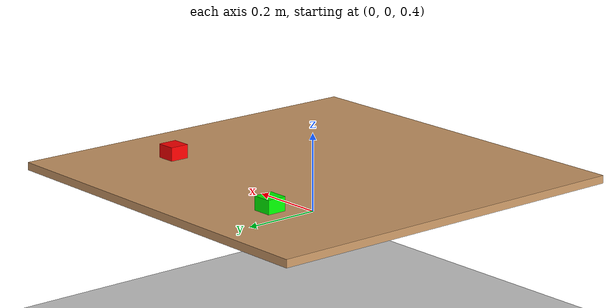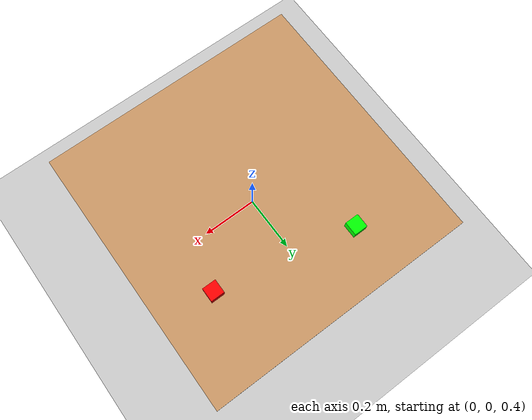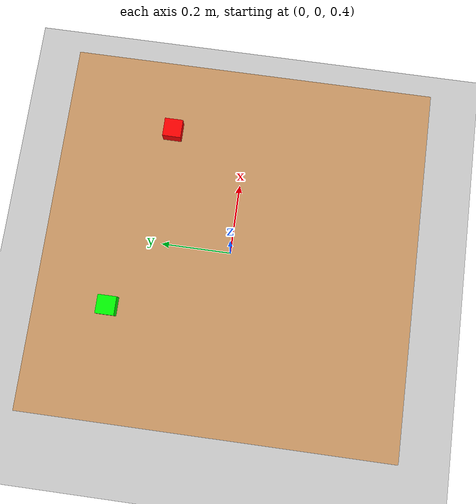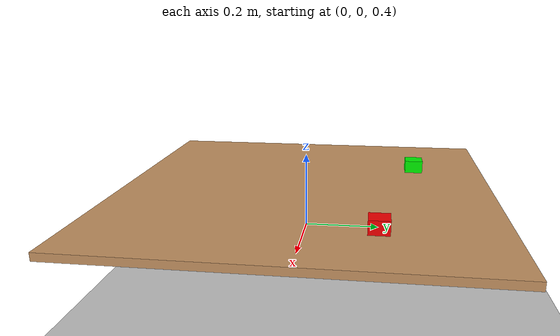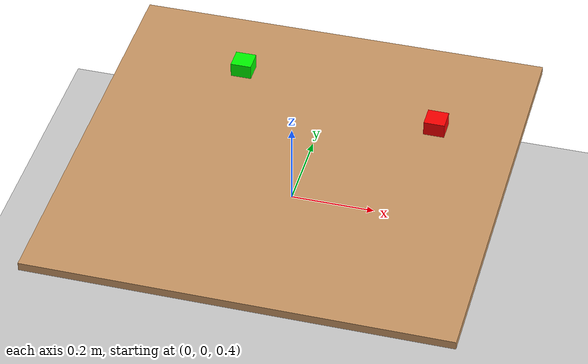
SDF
<?xml version="1.0" ?>
<sdf version="1.6">
  <world name="arm_world">

    <include>
      <uri>model://ground_plane</uri>
    </include>

    <include>
      <uri>model://sun</uri>
    </include>

    <!-- Table for the arm -->
    <model name="table">
      <static>true</static>
      <link name="table_link">
        <pose>0 0 0.5 0 0 0</pose>
        <collision name="table_collision">
          <geometry>
            <box>
              <size>1.0 1.0 0.02</size>
            </box>
          </geometry>
        </collision>
        <visual name="table_visual">
          <geometry>
            <box>
              <size>1.0 1.0 0.02</size>
            </box>
          </geometry>
          <material>
            <ambient>0.8 0.6 0.4 1</ambient>
            <diffuse>0.8 0.6 0.4 1</diffuse>
          </material>
        </visual>
      </link>
    </model>

    <!-- Some objects for manipulation -->
    <model name="box1">
      <pose>0.3 0.2 0.52 0 0 0</pose>
      <link name="box_link">
        <collision name="box_collision">
          <geometry>
            <box>
              <size>0.05 0.05 0.05</size>
            </box>
          </geometry>
        </collision>
        <visual name="box_visual">
          <geometry>
            <box>
              <size>0.05 0.05 0.05</size>
            </box>
          </geometry>
          <material>
            <ambient>1 0 0 1</ambient>
            <diffuse>1 0 0 1</diffuse>
          </material>
        </visual>
        <inertial>
          <mass>0.1</mass>
          <inertia>
            <ixx>0.001</ixx>
            <iyy>0.001</iyy>
            <izz>0.001</izz>
          </inertia>
        </inertial>
      </link>
    </model>

    <model name="box2">
      <pose>-0.2 0.3 0.52 0 0 0</pose>
      <link name="box_link">
        <collision name="box_collision">
          <geometry>
            <box>
              <size>0.05 0.05 0.05</size>
            </box>
          </geometry>
        </collision>
        <visual name="box_visual">
          <geometry>
            <box>
              <size>0.05 0.05 0.05</size>
            </box>
          </geometry>
          <material>
            <ambient>0 1 0 1</ambient>
            <diffuse>0 1 0 1</diffuse>
          </material>
        </visual>
        <inertial>
          <mass>0.1</mass>
          <inertia>
            <ixx>0.001</ixx>
            <iyy>0.001</iyy>
            <izz>0.001</izz>
          </inertia>
        </inertial>
      </link>
    </model>

    <!-- Physics settings -->
    <physics type="ode">
      <real_time_update_rate>1000</real_time_update_rate>
      <max_step_size>0.001</max_step_size>
      <real_time_factor>1</real_time_factor>
      <ode>
        <solver>
          <type>quick</type>
          <iters>150</iters>
          <precon_iters>0</precon_iters>
          <sor>1.400000</sor>
          <use_dynamic_moi_rescaling>1</use_dynamic_moi_rescaling>
        </solver>
        <constraints>
          <cfm>0.00001</cfm>
          <erp>0.2</erp>
          <contact_max_correcting_vel>2000.000000</contact_max_correcting_vel>
          <contact_surface_layer>0.01000</contact_surface_layer>
        </constraints>
      </ode>
    </physics>

  </world>
</sdf>
